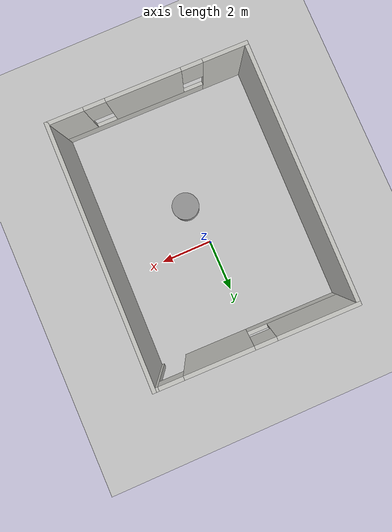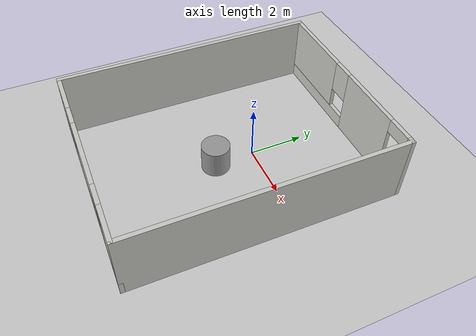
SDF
<sdf version="1.7">
 <world name="default">
  <light name="sun" type="directional">
   <pose>0 0 10 0 -0 0</pose>
   <diffuse>0.8 0.8 0.8 1</diffuse>
   <specular>0.2 0.2 0.2 1</specular>
   <attenuation>
    <range>1000</range>
    <constant>0.9</constant>
    <linear>0.01</linear>
    <quadratic>0.001</quadratic>
   </attenuation>
   <direction>-0.5 0.1 -0.9</direction>
   <spot><inner_angle>0</inner_angle><outer_angle>0</outer_angle><falloff>0</falloff></spot>
  </light>
  <model name="ground_plane">
   <static>1</static>
   <link name="link">
    <collision name="collision">
     <geometry><plane><normal>0 0 1</normal><size>100 100</size></plane></geometry>
     <surface><friction><ode><mu>100</mu><mu2>50</mu2></ode></friction></surface>
    </collision>
    <visual name="visual">
     <cast_shadows>0</cast_shadows>
     <geometry><plane><normal>0 0 1</normal><size>100 100</size></plane></geometry>
     <material>
      <script><uri>file://media/materials/scripts/gazebo.material</uri><name>Gazebo/Grey</name></script>
     </material>
    </visual>
   </link>
  </model>
  <gravity>0 0 -9.8</gravity>
  <magnetic_field>6e-06 2.3e-05 -4.2e-05</magnetic_field>
  <atmosphere type="adiabatic"/>
  <physics type="ode">
   <max_step_size>0.001</max_step_size>
   <real_time_factor>1</real_time_factor>
   <real_time_update_rate>1000</real_time_update_rate>
  </physics>
  <scene><ambient>0.4 0.4 0.4 1</ambient><background>0.7 0.7 0.7 1</background><shadows>1</shadows></scene>
  <audio><device>default</device></audio>
  <spherical_coordinates>
   <surface_model>EARTH_WGS84</surface_model>
   <latitude_deg>0</latitude_deg>
   <longitude_deg>0</longitude_deg>
   <elevation>0</elevation>
   <heading_deg>0</heading_deg>
  </spherical_coordinates>
  <model name="lab_test">
   <pose>-0.046765 0.147794 0 0 -0 1.55688</pose>
   <link name="Wall_0">
    <pose>3.5925 0 0 0 -0 1.5708</pose>
    <visual name="Wall_0_Visual_0">
     <pose>-3.6278 0 1.25 0 -0 0</pose>
     <geometry><box><size>0.244404 0.15 2.5</size></box></geometry>
     <material>
      <script><uri>file://media/materials/scripts/gazebo.material</uri><name>Gazebo/CeilingTiled</name></script>
      <ambient>1 1 1 1</ambient>
     </material>
     <meta><layer>0</layer></meta>
    </visual>
    <collision name="Wall_0_Collision_0">
     <geometry><box><size>0.244404 0.15 2.5</size></box></geometry>
     <pose>-3.6278 0 1.25 0 -0 0</pose>
    </collision>
    <visual name="Wall_0_Visual_1">
     <pose>-1.34148 0 1.25 0 -0 0</pose>
     <geometry><box><size>2.52822 0.15 2.5</size></box></geometry>
     <material>
      <script><uri>file://media/materials/scripts/gazebo.material</uri><name>Gazebo/CeilingTiled</name></script>
      <ambient>1 1 1 1</ambient>
     </material>
     <meta><layer>0</layer></meta>
    </visual>
    <collision name="Wall_0_Collision_1">
     <geometry><box><size>2.52822 0.15 2.5</size></box></geometry>
     <pose>-1.34148 0 1.25 0 -0 0</pose>
    </collision>
    <visual name="Wall_0_Visual_2">
     <pose>1.83631 0 0.25 0 -0 0</pose>
     <geometry><box><size>3.82737 0.15 0.5</size></box></geometry>
     <material>
      <script><uri>file://media/materials/scripts/gazebo.material</uri><name>Gazebo/CeilingTiled</name></script>
      <ambient>1 1 1 1</ambient>
     </material>
     <meta><layer>0</layer></meta>
    </visual>
    <collision name="Wall_0_Collision_2">
     <geometry><box><size>3.82737 0.15 0.5</size></box></geometry>
     <pose>1.83631 0 0.25 0 -0 0</pose>
    </collision>
    <visual name="Wall_0_Visual_3">
     <pose>2.23631 0 1.5 0 -0 0</pose>
     <geometry><box><size>3.02737 0.15 2</size></box></geometry>
     <material>
      <script><uri>file://media/materials/scripts/gazebo.material</uri><name>Gazebo/CeilingTiled</name></script>
      <ambient>1 1 1 1</ambient>
     </material>
     <meta><layer>0</layer></meta>
    </visual>
    <collision name="Wall_0_Collision_3">
     <geometry><box><size>3.02737 0.15 2</size></box></geometry>
     <pose>2.23631 0 1.5 0 -0 0</pose>
    </collision>
    <visual name="Wall_0_Visual_4">
     <pose>0.322629 0 1.9 0 -0 0</pose>
     <geometry><box><size>0.8 0.15 1.2</size></box></geometry>
     <material>
      <script><uri>file://media/materials/scripts/gazebo.material</uri><name>Gazebo/CeilingTiled</name></script>
      <ambient>1 1 1 1</ambient>
     </material>
     <meta><layer>0</layer></meta>
    </visual>
    <collision name="Wall_0_Collision_4">
     <geometry><box><size>0.8 0.15 1.2</size></box></geometry>
     <pose>0.322629 0 1.9 0 -0 0</pose>
    </collision>
    <visual name="Wall_0_Visual_5">
     <pose>-3.0556 0 2.25 0 -0 0</pose>
     <geometry><box><size>0.9 0.15 0.5</size></box></geometry>
     <material>
      <script><uri>file://media/materials/scripts/gazebo.material</uri><name>Gazebo/CeilingTiled</name></script>
      <ambient>1 1 1 1</ambient>
     </material>
     <meta><layer>0</layer></meta>
    </visual>
    <collision name="Wall_0_Collision_5">
     <geometry><box><size>0.9 0.15 0.5</size></box></geometry>
     <pose>-3.0556 0 2.25 0 -0 0</pose>
    </collision>
   </link>
   <link name="Wall_1">
    <collision name="Wall_1_Collision">
     <geometry><box><size>9.75 0.15 2.5</size></box></geometry>
     <pose>0 0 1.25 0 -0 0</pose>
    </collision>
    <visual name="Wall_1_Visual">
     <pose>0 0 1.25 0 -0 0</pose>
     <geometry><box><size>9.75 0.15 2.5</size></box></geometry>
     <material>
      <script><uri>file://media/materials/scripts/gazebo.material</uri><name>Gazebo/CeilingTiled</name></script>
      <ambient>1 1 1 1</ambient>
     </material>
     <meta><layer>0</layer></meta>
    </visual>
    <pose>-1.2075 3.675 0 0 -0 3.14159</pose>
   </link>
   <link name="Wall_2">
    <pose>-6.0075 0 0 0 -0 -1.5708</pose>
    <visual name="Wall_2_Visual_0">
     <pose>-2.90132 0 1.25 0 -0 0</pose>
     <geometry><box><size>1.69736 0.15 2.5</size></box></geometry>
     <material>
      <script><uri>file://media/materials/scripts/gazebo.material</uri><name>Gazebo/CeilingTiled</name></script>
      <ambient>1 1 1 1</ambient>
     </material>
     <meta><layer>0</layer></meta>
    </visual>
    <collision name="Wall_2_Collision_0">
     <geometry><box><size>1.69736 0.15 2.5</size></box></geometry>
     <pose>-2.90132 0 1.25 0 -0 0</pose>
    </collision>
    <visual name="Wall_2_Visual_1">
     <pose>0.848681 0 0.25 0 -0 0</pose>
     <geometry><box><size>5.80264 0.15 0.5</size></box></geometry>
     <material>
      <script><uri>file://media/materials/scripts/gazebo.material</uri><name>Gazebo/CeilingTiled</name></script>
      <ambient>1 1 1 1</ambient>
     </material>
     <meta><layer>0</layer></meta>
    </visual>
    <collision name="Wall_2_Collision_1">
     <geometry><box><size>5.80264 0.15 0.5</size></box></geometry>
     <pose>0.848681 0 0.25 0 -0 0</pose>
    </collision>
    <visual name="Wall_2_Visual_2">
     <pose>0.142874 0 1.5 0 -0 0</pose>
     <geometry><box><size>2.79103 0.15 2</size></box></geometry>
     <material>
      <script><uri>file://media/materials/scripts/gazebo.material</uri><name>Gazebo/CeilingTiled</name></script>
      <ambient>1 1 1 1</ambient>
     </material>
     <meta><layer>0</layer></meta>
    </visual>
    <collision name="Wall_2_Collision_2">
     <geometry><box><size>2.79103 0.15 2</size></box></geometry>
     <pose>0.142874 0 1.5 0 -0 0</pose>
    </collision>
    <visual name="Wall_2_Visual_3">
     <pose>3.04419 0 1.5 0 -0 0</pose>
     <geometry><box><size>1.41161 0.15 2</size></box></geometry>
     <material>
      <script><uri>file://media/materials/scripts/gazebo.material</uri><name>Gazebo/CeilingTiled</name></script>
      <ambient>1 1 1 1</ambient>
     </material>
     <meta><layer>0</layer></meta>
    </visual>
    <collision name="Wall_2_Collision_3">
     <geometry><box><size>1.41161 0.15 2</size></box></geometry>
     <pose>3.04419 0 1.5 0 -0 0</pose>
    </collision>
    <visual name="Wall_2_Visual_4">
     <pose>-1.65264 0 1.9 0 -0 0</pose>
     <geometry><box><size>0.8 0.15 1.2</size></box></geometry>
     <material>
      <script><uri>file://media/materials/scripts/gazebo.material</uri><name>Gazebo/CeilingTiled</name></script>
      <ambient>1 1 1 1</ambient>
     </material>
     <meta><layer>0</layer></meta>
    </visual>
    <collision name="Wall_2_Collision_4">
     <geometry><box><size>0.8 0.15 1.2</size></box></geometry>
     <pose>-1.65264 0 1.9 0 -0 0</pose>
    </collision>
    <visual name="Wall_2_Visual_5">
     <pose>1.93839 0 1.9 0 -0 0</pose>
     <geometry><box><size>0.8 0.15 1.2</size></box></geometry>
     <material>
      <script><uri>file://media/materials/scripts/gazebo.material</uri><name>Gazebo/CeilingTiled</name></script>
      <ambient>1 1 1 1</ambient>
     </material>
     <meta><layer>0</layer></meta>
    </visual>
    <collision name="Wall_2_Collision_5">
     <geometry><box><size>0.8 0.15 1.2</size></box></geometry>
     <pose>1.93839 0 1.9 0 -0 0</pose>
    </collision>
   </link>
   <link name="Wall_3">
    <collision name="Wall_3_Collision">
     <geometry><box><size>9.75 0.15 2.5</size></box></geometry>
     <pose>0 0 1.25 0 -0 0</pose>
    </collision>
    <visual name="Wall_3_Visual">
     <pose>0 0 1.25 0 -0 0</pose>
     <geometry><box><size>9.75 0.15 2.5</size></box></geometry>
     <material>
      <script><uri>file://media/materials/scripts/gazebo.material</uri><name>Gazebo/CeilingTiled</name></script>
      <ambient>1 1 1 1</ambient>
     </material>
     <meta><layer>0</layer></meta>
    </visual>
    <pose>-1.2075 -3.675 0 0 -0 0</pose>
   </link>
   <static>1</static>
  </model>
  <model name="unit_cylinder">
   <pose>0.329848 -1.57112 0.823763 0 -0 0</pose>
   <link name="link">
    <inertial>
     <mass>1</mass>
     <inertia><ixx>0.145833</ixx><ixy>0</ixy><ixz>0</ixz><iyy>0.145833</iyy><iyz>0</iyz><izz>0.125</izz></inertia>
    </inertial>
    <collision name="collision">
     <geometry><cylinder><radius>0.5</radius><length>1</length></cylinder></geometry>
    </collision>
    <visual name="visual">
     <geometry><cylinder><radius>0.5</radius><length>1</length></cylinder></geometry>
     <material>
      <script><name>Gazebo/Grey</name><uri>file://media/materials/scripts/gazebo.material</uri></script>
     </material>
    </visual>
   </link>
  </model>
 </world>
</sdf>
